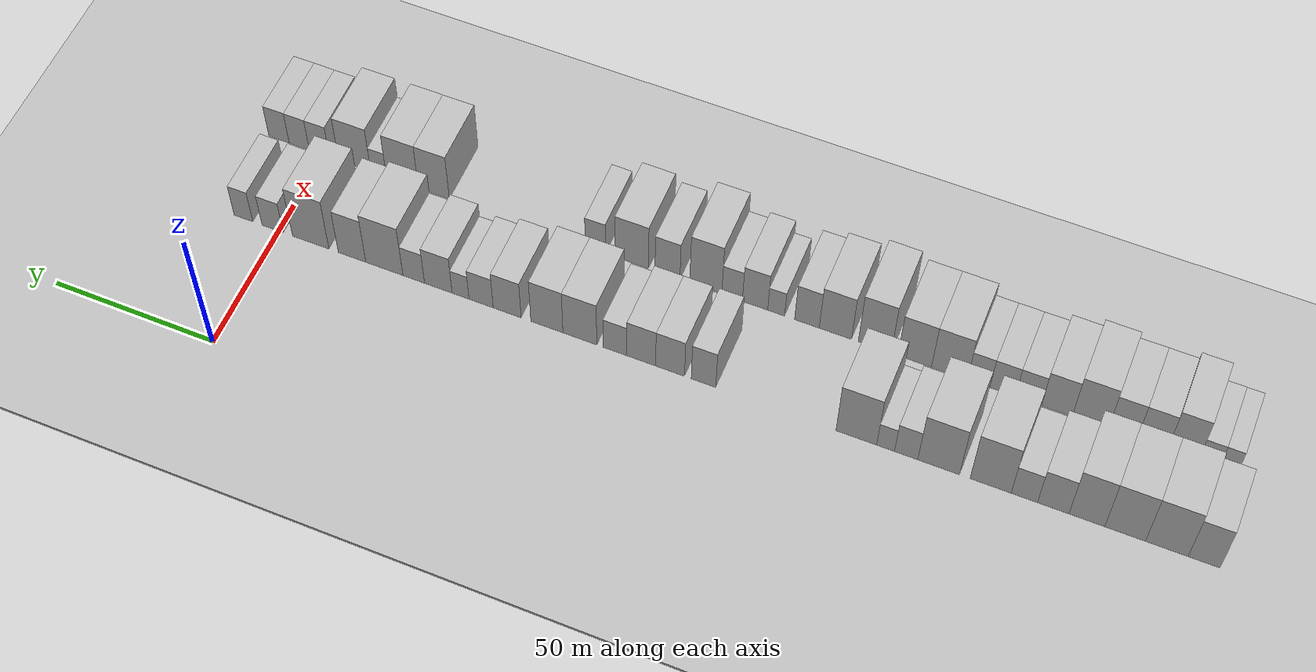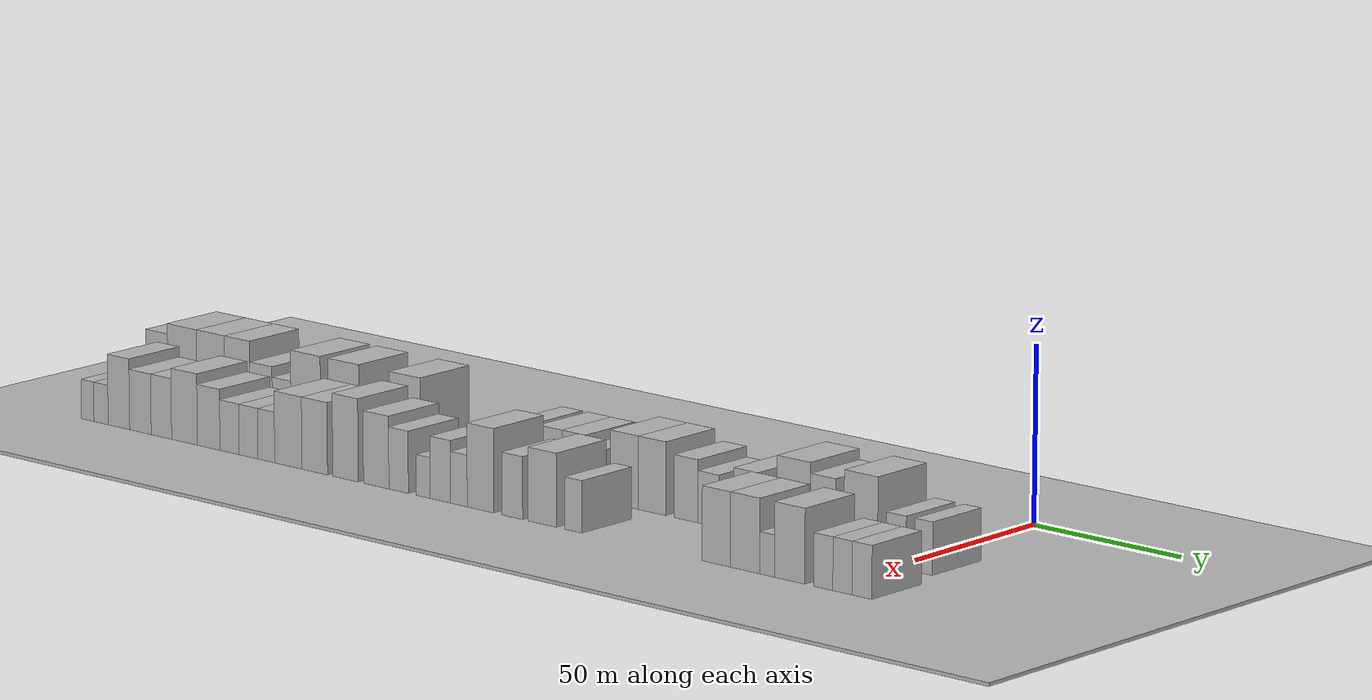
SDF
<sdf version="1.6">
 <world name="default">
  <include><name>ground_plane_1</name><uri>model://HANNAS_ground_plane</uri></include>
  <include>
   <name>ground_plane_2</name>
   <uri>model://HANNAS_ground_plane</uri>
   <pose>100 0 0  0 0 0</pose>
  </include>
  <model name="building_1">
   <static>1</static>
   <pose>50.0000 -273.6800 0 0.000000 0.000000 0.000000</pose>
   <link name="link">
    <pose>0 0 10.50 0 0 0</pose>
    <collision name="collision"><geometry><box><size>20.0000 8.6399 21.0000</size></box></geometry></collision>
    <visual name="visual">
     <cast_shadows>0</cast_shadows>
     <geometry><box><size>20.0000 8.6399 21.0000</size></box></geometry>
     <material>
      <script>
       <uri>model://HANNAS_wall/materials/scripts</uri>
       <uri>model://HANNAS_wall/materials/textures</uri>
       <name>vrc/HANNAS_wall</name>
      </script>
     </material>
    </visual>
   </link>
  </model>
  <model name="building_2">
   <static>1</static>
   <pose>50.0000 -263.5427 0 0.000000 0.000000 0.000000</pose>
   <link name="link">
    <pose>0 0 12.00 0 0 0</pose>
    <collision name="collision"><geometry><box><size>20.0000 11.6347 24.0000</size></box></geometry></collision>
    <visual name="visual">
     <cast_shadows>0</cast_shadows>
     <geometry><box><size>20.0000 11.6347 24.0000</size></box></geometry>
     <material>
      <script>
       <uri>model://HANNAS_wall/materials/scripts</uri>
       <uri>model://HANNAS_wall/materials/textures</uri>
       <name>vrc/HANNAS_wall</name>
      </script>
     </material>
    </visual>
   </link>
  </model>
  <model name="building_3">
   <static>1</static>
   <pose>50.0000 -252.1240 0 0.000000 0.000000 0.000000</pose>
   <link name="link">
    <pose>0 0 12.00 0 0 0</pose>
    <collision name="collision"><geometry><box><size>20.0000 11.2028 24.0000</size></box></geometry></collision>
    <visual name="visual">
     <cast_shadows>0</cast_shadows>
     <geometry><box><size>20.0000 11.2028 24.0000</size></box></geometry>
     <material>
      <script>
       <uri>model://HANNAS_wall/materials/scripts</uri>
       <uri>model://HANNAS_wall/materials/textures</uri>
       <name>vrc/HANNAS_wall</name>
      </script>
     </material>
    </visual>
   </link>
  </model>
  <model name="building_4">
   <static>1</static>
   <pose>50.0000 -241.5626 0 0.000000 0.000000 0.000000</pose>
   <link name="link">
    <pose>0 0 12.00 0 0 0</pose>
    <collision name="collision"><geometry><box><size>20.0000 9.9202 24.0000</size></box></geometry></collision>
    <visual name="visual">
     <cast_shadows>0</cast_shadows>
     <geometry><box><size>20.0000 9.9202 24.0000</size></box></geometry>
     <material>
      <script>
       <uri>model://HANNAS_wall/materials/scripts</uri>
       <uri>model://HANNAS_wall/materials/textures</uri>
       <name>vrc/HANNAS_wall</name>
      </script>
     </material>
    </visual>
   </link>
  </model>
  <model name="building_5">
   <static>1</static>
   <pose>50.0000 -232.2219 0 0.000000 0.000000 0.000000</pose>
   <link name="link">
    <pose>0 0 9.00 0 0 0</pose>
    <collision name="collision"><geometry><box><size>20.0000 8.7611 18.0000</size></box></geometry></collision>
    <visual name="visual">
     <cast_shadows>0</cast_shadows>
     <geometry><box><size>20.0000 8.7611 18.0000</size></box></geometry>
     <material>
      <script>
       <uri>model://HANNAS_wall/materials/scripts</uri>
       <uri>model://HANNAS_wall/materials/textures</uri>
       <name>vrc/HANNAS_wall</name>
      </script>
     </material>
    </visual>
   </link>
  </model>
  <model name="building_6">
   <static>1</static>
   <pose>50.0000 -224.1485 0 0.000000 0.000000 0.000000</pose>
   <link name="link">
    <pose>0 0 7.50 0 0 0</pose>
    <collision name="collision"><geometry><box><size>20.0000 7.3857 15.0000</size></box></geometry></collision>
    <visual name="visual">
     <cast_shadows>0</cast_shadows>
     <geometry><box><size>20.0000 7.3857 15.0000</size></box></geometry>
     <material>
      <script>
       <uri>model://HANNAS_wall/materials/scripts</uri>
       <uri>model://HANNAS_wall/materials/textures</uri>
       <name>vrc/HANNAS_wall</name>
      </script>
     </material>
    </visual>
   </link>
  </model>
  <model name="building_7">
   <static>1</static>
   <pose>50.0000 -214.6706 0 0.000000 0.000000 0.000000</pose>
   <link name="link">
    <pose>0 0 12.00 0 0 0</pose>
    <collision name="collision"><geometry><box><size>20.0000 11.5701 24.0000</size></box></geometry></collision>
    <visual name="visual">
     <cast_shadows>0</cast_shadows>
     <geometry><box><size>20.0000 11.5701 24.0000</size></box></geometry>
     <material>
      <script>
       <uri>model://HANNAS_wall/materials/scripts</uri>
       <uri>model://HANNAS_wall/materials/textures</uri>
       <name>vrc/HANNAS_wall</name>
      </script>
     </material>
    </visual>
   </link>
  </model>
  <model name="building_8">
   <static>1</static>
   <pose>50.0000 -199.9398 0 0.000000 0.000000 0.000000</pose>
   <link name="link">
    <pose>0 0 12.00 0 0 0</pose>
    <collision name="collision"><geometry><box><size>20.0000 11.8915 24.0000</size></box></geometry></collision>
    <visual name="visual">
     <cast_shadows>0</cast_shadows>
     <geometry><box><size>20.0000 11.8915 24.0000</size></box></geometry>
     <material>
      <script>
       <uri>model://HANNAS_wall/materials/scripts</uri>
       <uri>model://HANNAS_wall/materials/textures</uri>
       <name>vrc/HANNAS_wall</name>
      </script>
     </material>
    </visual>
   </link>
  </model>
  <model name="building_9">
   <static>1</static>
   <pose>50.0000 -190.6809 0 0.000000 0.000000 0.000000</pose>
   <link name="link">
    <pose>0 0 7.50 0 0 0</pose>
    <collision name="collision"><geometry><box><size>20.0000 6.6264 15.0000</size></box></geometry></collision>
    <visual name="visual">
     <cast_shadows>0</cast_shadows>
     <geometry><box><size>20.0000 6.6264 15.0000</size></box></geometry>
     <material>
      <script>
       <uri>model://HANNAS_wall/materials/scripts</uri>
       <uri>model://HANNAS_wall/materials/textures</uri>
       <name>vrc/HANNAS_wall</name>
      </script>
     </material>
    </visual>
   </link>
  </model>
  <model name="building_10">
   <static>1</static>
   <pose>50.0000 -184.7908 0 0.000000 0.000000 0.000000</pose>
   <link name="link">
    <pose>0 0 6.00 0 0 0</pose>
    <collision name="collision"><geometry><box><size>20.0000 5.1538 12.0000</size></box></geometry></collision>
    <visual name="visual">
     <cast_shadows>0</cast_shadows>
     <geometry><box><size>20.0000 5.1538 12.0000</size></box></geometry>
     <material>
      <script>
       <uri>model://HANNAS_wall/materials/scripts</uri>
       <uri>model://HANNAS_wall/materials/textures</uri>
       <name>vrc/HANNAS_wall</name>
      </script>
     </material>
    </visual>
   </link>
  </model>
  <model name="building_11">
   <static>1</static>
   <pose>50.0000 -176.3409 0 0.000000 0.000000 0.000000</pose>
   <link name="link">
    <pose>0 0 12.00 0 0 0</pose>
    <collision name="collision"><geometry><box><size>20.0000 11.7459 24.0000</size></box></geometry></collision>
    <visual name="visual">
     <cast_shadows>0</cast_shadows>
     <geometry><box><size>20.0000 11.7459 24.0000</size></box></geometry>
     <material>
      <script>
       <uri>model://HANNAS_wall/materials/scripts</uri>
       <uri>model://HANNAS_wall/materials/textures</uri>
       <name>vrc/HANNAS_wall</name>
      </script>
     </material>
    </visual>
   </link>
  </model>
  <model name="building_12">
   <static>1</static>
   <pose>50.0000 -131.5599 0 0.000000 0.000000 0.000000</pose>
   <link name="link">
    <pose>0 0 9.00 0 0 0</pose>
    <collision name="collision"><geometry><box><size>20.0000 7.2720 18.0000</size></box></geometry></collision>
    <visual name="visual">
     <cast_shadows>0</cast_shadows>
     <geometry><box><size>20.0000 7.2720 18.0000</size></box></geometry>
     <material>
      <script>
       <uri>model://HANNAS_wall/materials/scripts</uri>
       <uri>model://HANNAS_wall/materials/textures</uri>
       <name>vrc/HANNAS_wall</name>
      </script>
     </material>
    </visual>
   </link>
  </model>
  <model name="building_13">
   <static>1</static>
   <pose>50.0000 -121.6003 0 0.000000 0.000000 0.000000</pose>
   <link name="link">
    <pose>0 0 9.00 0 0 0</pose>
    <collision name="collision"><geometry><box><size>20.0000 8.6473 18.0000</size></box></geometry></collision>
    <visual name="visual">
     <cast_shadows>0</cast_shadows>
     <geometry><box><size>20.0000 8.6473 18.0000</size></box></geometry>
     <material>
      <script>
       <uri>model://HANNAS_wall/materials/scripts</uri>
       <uri>model://HANNAS_wall/materials/textures</uri>
       <name>vrc/HANNAS_wall</name>
      </script>
     </material>
    </visual>
   </link>
  </model>
  <model name="building_14">
   <static>1</static>
   <pose>50.0000 -112.9664 0 0.000000 0.000000 0.000000</pose>
   <link name="link">
    <pose>0 0 9.00 0 0 0</pose>
    <collision name="collision"><geometry><box><size>20.0000 8.6204 18.0000</size></box></geometry></collision>
    <visual name="visual">
     <cast_shadows>0</cast_shadows>
     <geometry><box><size>20.0000 8.6204 18.0000</size></box></geometry>
     <material>
      <script>
       <uri>model://HANNAS_wall/materials/scripts</uri>
       <uri>model://HANNAS_wall/materials/textures</uri>
       <name>vrc/HANNAS_wall</name>
      </script>
     </material>
    </visual>
   </link>
  </model>
  <model name="building_15">
   <static>1</static>
   <pose>50.0000 -105.1115 0 0.000000 0.000000 0.000000</pose>
   <link name="link">
    <pose>0 0 7.50 0 0 0</pose>
    <collision name="collision"><geometry><box><size>20.0000 7.0894 15.0000</size></box></geometry></collision>
    <visual name="visual">
     <cast_shadows>0</cast_shadows>
     <geometry><box><size>20.0000 7.0894 15.0000</size></box></geometry>
     <material>
      <script>
       <uri>model://HANNAS_wall/materials/scripts</uri>
       <uri>model://HANNAS_wall/materials/textures</uri>
       <name>vrc/HANNAS_wall</name>
      </script>
     </material>
    </visual>
   </link>
  </model>
  <model name="building_16">
   <static>1</static>
   <pose>50.0000 -94.4157 0 0.000000 0.000000 0.000000</pose>
   <link name="link">
    <pose>0 0 10.50 0 0 0</pose>
    <collision name="collision"><geometry><box><size>20.0000 10.3022 21.0000</size></box></geometry></collision>
    <visual name="visual">
     <cast_shadows>0</cast_shadows>
     <geometry><box><size>20.0000 10.3022 21.0000</size></box></geometry>
     <material>
      <script>
       <uri>model://HANNAS_wall/materials/scripts</uri>
       <uri>model://HANNAS_wall/materials/textures</uri>
       <name>vrc/HANNAS_wall</name>
      </script>
     </material>
    </visual>
   </link>
  </model>
  <model name="building_17">
   <static>1</static>
   <pose>50.0000 -84.3508 0 0.000000 0.000000 0.000000</pose>
   <link name="link">
    <pose>0 0 10.50 0 0 0</pose>
    <collision name="collision"><geometry><box><size>20.0000 9.8277 21.0000</size></box></geometry></collision>
    <visual name="visual">
     <cast_shadows>0</cast_shadows>
     <geometry><box><size>20.0000 9.8277 21.0000</size></box></geometry>
     <material>
      <script>
       <uri>model://HANNAS_wall/materials/scripts</uri>
       <uri>model://HANNAS_wall/materials/textures</uri>
       <name>vrc/HANNAS_wall</name>
      </script>
     </material>
    </visual>
   </link>
  </model>
  <model name="building_18">
   <static>1</static>
   <pose>50.0000 -72.1331 0 0.000000 0.000000 0.000000</pose>
   <link name="link">
    <pose>0 0 9.00 0 0 0</pose>
    <collision name="collision"><geometry><box><size>20.0000 8.6077 18.0000</size></box></geometry></collision>
    <visual name="visual">
     <cast_shadows>0</cast_shadows>
     <geometry><box><size>20.0000 8.6077 18.0000</size></box></geometry>
     <material>
      <script>
       <uri>model://HANNAS_wall/materials/scripts</uri>
       <uri>model://HANNAS_wall/materials/textures</uri>
       <name>vrc/HANNAS_wall</name>
      </script>
     </material>
    </visual>
   </link>
  </model>
  <model name="building_19">
   <static>1</static>
   <pose>50.0000 -64.0873 0 0.000000 0.000000 0.000000</pose>
   <link name="link">
    <pose>0 0 7.50 0 0 0</pose>
    <collision name="collision"><geometry><box><size>20.0000 7.4838 15.0000</size></box></geometry></collision>
    <visual name="visual">
     <cast_shadows>0</cast_shadows>
     <geometry><box><size>20.0000 7.4838 15.0000</size></box></geometry>
     <material>
      <script>
       <uri>model://HANNAS_wall/materials/scripts</uri>
       <uri>model://HANNAS_wall/materials/textures</uri>
       <name>vrc/HANNAS_wall</name>
      </script>
     </material>
    </visual>
   </link>
  </model>
  <model name="building_20">
   <static>1</static>
   <pose>50.0000 -57.7232 0 0.000000 0.000000 0.000000</pose>
   <link name="link">
    <pose>0 0 6.00 0 0 0</pose>
    <collision name="collision"><geometry><box><size>20.0000 5.2445 12.0000</size></box></geometry></collision>
    <visual name="visual">
     <cast_shadows>0</cast_shadows>
     <geometry><box><size>20.0000 5.2445 12.0000</size></box></geometry>
     <material>
      <script>
       <uri>model://HANNAS_wall/materials/scripts</uri>
       <uri>model://HANNAS_wall/materials/textures</uri>
       <name>vrc/HANNAS_wall</name>
      </script>
     </material>
    </visual>
   </link>
  </model>
  <model name="building_21">
   <static>1</static>
   <pose>50.0000 -50.7852 0 0.000000 0.000000 0.000000</pose>
   <link name="link">
    <pose>0 0 9.00 0 0 0</pose>
    <collision name="collision"><geometry><box><size>20.0000 8.6315 18.0000</size></box></geometry></collision>
    <visual name="visual">
     <cast_shadows>0</cast_shadows>
     <geometry><box><size>20.0000 8.6315 18.0000</size></box></geometry>
     <material>
      <script>
       <uri>model://HANNAS_wall/materials/scripts</uri>
       <uri>model://HANNAS_wall/materials/textures</uri>
       <name>vrc/HANNAS_wall</name>
      </script>
     </material>
    </visual>
   </link>
  </model>
  <model name="building_22">
   <static>1</static>
   <pose>50.0000 -43.0799 0 0.000000 0.000000 0.000000</pose>
   <link name="link">
    <pose>0 0 7.50 0 0 0</pose>
    <collision name="collision"><geometry><box><size>20.0000 6.7789 15.0000</size></box></geometry></collision>
    <visual name="visual">
     <cast_shadows>0</cast_shadows>
     <geometry><box><size>20.0000 6.7789 15.0000</size></box></geometry>
     <material>
      <script>
       <uri>model://HANNAS_wall/materials/scripts</uri>
       <uri>model://HANNAS_wall/materials/textures</uri>
       <name>vrc/HANNAS_wall</name>
      </script>
     </material>
    </visual>
   </link>
  </model>
  <model name="building_23">
   <static>1</static>
   <pose>50.0000 -33.8264 0 0.000000 0.000000 0.000000</pose>
   <link name="link">
    <pose>0 0 12.00 0 0 0</pose>
    <collision name="collision"><geometry><box><size>20.0000 11.7282 24.0000</size></box></geometry></collision>
    <visual name="visual">
     <cast_shadows>0</cast_shadows>
     <geometry><box><size>20.0000 11.7282 24.0000</size></box></geometry>
     <material>
      <script>
       <uri>model://HANNAS_wall/materials/scripts</uri>
       <uri>model://HANNAS_wall/materials/textures</uri>
       <name>vrc/HANNAS_wall</name>
      </script>
     </material>
    </visual>
   </link>
  </model>
  <model name="building_24">
   <static>1</static>
   <pose>50.0000 -23.6046 0 0.000000 0.000000 0.000000</pose>
   <link name="link">
    <pose>0 0 10.50 0 0 0</pose>
    <collision name="collision"><geometry><box><size>20.0000 8.7154 21.0000</size></box></geometry></collision>
    <visual name="visual">
     <cast_shadows>0</cast_shadows>
     <geometry><box><size>20.0000 8.7154 21.0000</size></box></geometry>
     <material>
      <script>
       <uri>model://HANNAS_wall/materials/scripts</uri>
       <uri>model://HANNAS_wall/materials/textures</uri>
       <name>vrc/HANNAS_wall</name>
      </script>
     </material>
    </visual>
   </link>
  </model>
  <model name="building_25">
   <static>1</static>
   <pose>50.0000 -10.4218 0 0.000000 0.000000 0.000000</pose>
   <link name="link">
    <pose>0 0 12.00 0 0 0</pose>
    <collision name="collision"><geometry><box><size>20.0000 11.6502 24.0000</size></box></geometry></collision>
    <visual name="visual">
     <cast_shadows>0</cast_shadows>
     <geometry><box><size>20.0000 11.6502 24.0000</size></box></geometry>
     <material>
      <script>
       <uri>model://HANNAS_wall/materials/scripts</uri>
       <uri>model://HANNAS_wall/materials/textures</uri>
       <name>vrc/HANNAS_wall</name>
      </script>
     </material>
    </visual>
   </link>
  </model>
  <model name="building_26">
   <static>1</static>
   <pose>50.0000 1.8205 0 0.000000 0.000000 0.000000</pose>
   <link name="link">
    <pose>0 0 7.50 0 0 0</pose>
    <collision name="collision"><geometry><box><size>20.0000 6.8344 15.0000</size></box></geometry></collision>
    <visual name="visual">
     <cast_shadows>0</cast_shadows>
     <geometry><box><size>20.0000 6.8344 15.0000</size></box></geometry>
     <material>
      <script>
       <uri>model://HANNAS_wall/materials/scripts</uri>
       <uri>model://HANNAS_wall/materials/textures</uri>
       <name>vrc/HANNAS_wall</name>
      </script>
     </material>
    </visual>
   </link>
  </model>
  <model name="building_27">
   <static>1</static>
   <pose>50.0000 11.2494 0 0.000000 0.000000 0.000000</pose>
   <link name="link">
    <pose>0 0 7.50 0 0 0</pose>
    <collision name="collision"><geometry><box><size>20.0000 6.0233 15.0000</size></box></geometry></collision>
    <visual name="visual">
     <cast_shadows>0</cast_shadows>
     <geometry><box><size>20.0000 6.0233 15.0000</size></box></geometry>
     <material>
      <script>
       <uri>model://HANNAS_wall/materials/scripts</uri>
       <uri>model://HANNAS_wall/materials/textures</uri>
       <name>vrc/HANNAS_wall</name>
      </script>
     </material>
    </visual>
   </link>
  </model>
  <model name="building_56">
   <static>1</static>
   <pose>79.0000 -272.5074 0 0.000000 0.000000 0.000000</pose>
   <link name="link">
    <pose>0 0 6.00 0 0 0</pose>
    <collision name="collision"><geometry><box><size>20.0000 4.9853 12.0000</size></box></geometry></collision>
    <visual name="visual">
     <cast_shadows>0</cast_shadows>
     <geometry><box><size>20.0000 4.9853 12.0000</size></box></geometry>
     <material>
      <script>
       <uri>model://HANNAS_wall/materials/scripts</uri>
       <uri>model://HANNAS_wall/materials/textures</uri>
       <name>vrc/HANNAS_wall</name>
      </script>
     </material>
    </visual>
   </link>
  </model>
  <model name="building_57">
   <static>1</static>
   <pose>79.0000 -267.1416 0 0.000000 0.000000 0.000000</pose>
   <link name="link">
    <pose>0 0 6.00 0 0 0</pose>
    <collision name="collision"><geometry><box><size>20.0000 5.7462 12.0000</size></box></geometry></collision>
    <visual name="visual">
     <cast_shadows>0</cast_shadows>
     <geometry><box><size>20.0000 5.7462 12.0000</size></box></geometry>
     <material>
      <script>
       <uri>model://HANNAS_wall/materials/scripts</uri>
       <uri>model://HANNAS_wall/materials/textures</uri>
       <name>vrc/HANNAS_wall</name>
      </script>
     </material>
    </visual>
   </link>
  </model>
  <model name="building_58">
   <static>1</static>
   <pose>79.0000 -259.9325 0 0.000000 0.000000 0.000000</pose>
   <link name="link">
    <pose>0 0 10.50 0 0 0</pose>
    <collision name="collision"><geometry><box><size>20.0000 8.6721 21.0000</size></box></geometry></collision>
    <visual name="visual">
     <cast_shadows>0</cast_shadows>
     <geometry><box><size>20.0000 8.6721 21.0000</size></box></geometry>
     <material>
      <script>
       <uri>model://HANNAS_wall/materials/scripts</uri>
       <uri>model://HANNAS_wall/materials/textures</uri>
       <name>vrc/HANNAS_wall</name>
      </script>
     </material>
    </visual>
   </link>
  </model>
  <model name="building_59">
   <static>1</static>
   <pose>79.0000 -251.3336 0 0.000000 0.000000 0.000000</pose>
   <link name="link">
    <pose>0 0 9.00 0 0 0</pose>
    <collision name="collision"><geometry><box><size>20.0000 8.5257 18.0000</size></box></geometry></collision>
    <visual name="visual">
     <cast_shadows>0</cast_shadows>
     <geometry><box><size>20.0000 8.5257 18.0000</size></box></geometry>
     <material>
      <script>
       <uri>model://HANNAS_wall/materials/scripts</uri>
       <uri>model://HANNAS_wall/materials/textures</uri>
       <name>vrc/HANNAS_wall</name>
      </script>
     </material>
    </visual>
   </link>
  </model>
  <model name="building_60">
   <static>1</static>
   <pose>79.0000 -243.0124 0 0.000000 0.000000 0.000000</pose>
   <link name="link">
    <pose>0 0 9.00 0 0 0</pose>
    <collision name="collision"><geometry><box><size>20.0000 8.1168 18.0000</size></box></geometry></collision>
    <visual name="visual">
     <cast_shadows>0</cast_shadows>
     <geometry><box><size>20.0000 8.1168 18.0000</size></box></geometry>
     <material>
      <script>
       <uri>model://HANNAS_wall/materials/scripts</uri>
       <uri>model://HANNAS_wall/materials/textures</uri>
       <name>vrc/HANNAS_wall</name>
      </script>
     </material>
    </visual>
   </link>
  </model>
  <model name="building_61">
   <static>1</static>
   <pose>79.0000 -233.8450 0 0.000000 0.000000 0.000000</pose>
   <link name="link">
    <pose>0 0 10.50 0 0 0</pose>
    <collision name="collision"><geometry><box><size>20.0000 10.2180 21.0000</size></box></geometry></collision>
    <visual name="visual">
     <cast_shadows>0</cast_shadows>
     <geometry><box><size>20.0000 10.2180 21.0000</size></box></geometry>
     <material>
      <script>
       <uri>model://HANNAS_wall/materials/scripts</uri>
       <uri>model://HANNAS_wall/materials/textures</uri>
       <name>vrc/HANNAS_wall</name>
      </script>
     </material>
    </visual>
   </link>
  </model>
  <model name="building_62">
   <static>1</static>
   <pose>79.0000 -224.3165 0 0.000000 0.000000 0.000000</pose>
   <link name="link">
    <pose>0 0 9.00 0 0 0</pose>
    <collision name="collision"><geometry><box><size>20.0000 8.8390 18.0000</size></box></geometry></collision>
    <visual name="visual">
     <cast_shadows>0</cast_shadows>
     <geometry><box><size>20.0000 8.8390 18.0000</size></box></geometry>
     <material>
      <script>
       <uri>model://HANNAS_wall/materials/scripts</uri>
       <uri>model://HANNAS_wall/materials/textures</uri>
       <name>vrc/HANNAS_wall</name>
      </script>
     </material>
    </visual>
   </link>
  </model>
  <model name="building_63">
   <static>1</static>
   <pose>79.0000 -216.1628 0 0.000000 0.000000 0.000000</pose>
   <link name="link">
    <pose>0 0 7.50 0 0 0</pose>
    <collision name="collision"><geometry><box><size>20.0000 7.4683 15.0000</size></box></geometry></collision>
    <visual name="visual">
     <cast_shadows>0</cast_shadows>
     <geometry><box><size>20.0000 7.4683 15.0000</size></box></geometry>
     <material>
      <script>
       <uri>model://HANNAS_wall/materials/scripts</uri>
       <uri>model://HANNAS_wall/materials/textures</uri>
       <name>vrc/HANNAS_wall</name>
      </script>
     </material>
    </visual>
   </link>
  </model>
  <model name="building_64">
   <static>1</static>
   <pose>79.0000 -208.7522 0 0.000000 0.000000 0.000000</pose>
   <link name="link">
    <pose>0 0 7.50 0 0 0</pose>
    <collision name="collision"><geometry><box><size>20.0000 7.3530 15.0000</size></box></geometry></collision>
    <visual name="visual">
     <cast_shadows>0</cast_shadows>
     <geometry><box><size>20.0000 7.3530 15.0000</size></box></geometry>
     <material>
      <script>
       <uri>model://HANNAS_wall/materials/scripts</uri>
       <uri>model://HANNAS_wall/materials/textures</uri>
       <name>vrc/HANNAS_wall</name>
      </script>
     </material>
    </visual>
   </link>
  </model>
  <model name="building_65">
   <static>1</static>
   <pose>79.0000 -201.8320 0 0.000000 0.000000 0.000000</pose>
   <link name="link">
    <pose>0 0 7.50 0 0 0</pose>
    <collision name="collision"><geometry><box><size>20.0000 6.4873 15.0000</size></box></geometry></collision>
    <visual name="visual">
     <cast_shadows>0</cast_shadows>
     <geometry><box><size>20.0000 6.4873 15.0000</size></box></geometry>
     <material>
      <script>
       <uri>model://HANNAS_wall/materials/scripts</uri>
       <uri>model://HANNAS_wall/materials/textures</uri>
       <name>vrc/HANNAS_wall</name>
      </script>
     </material>
    </visual>
   </link>
  </model>
  <model name="building_66">
   <static>1</static>
   <pose>79.0000 -193.3451 0 0.000000 0.000000 0.000000</pose>
   <link name="link">
    <pose>0 0 10.50 0 0 0</pose>
    <collision name="collision"><geometry><box><size>20.0000 10.4865 21.0000</size></box></geometry></collision>
    <visual name="visual">
     <cast_shadows>0</cast_shadows>
     <geometry><box><size>20.0000 10.4865 21.0000</size></box></geometry>
     <material>
      <script>
       <uri>model://HANNAS_wall/materials/scripts</uri>
       <uri>model://HANNAS_wall/materials/textures</uri>
       <name>vrc/HANNAS_wall</name>
      </script>
     </material>
    </visual>
   </link>
  </model>
  <model name="building_67">
   <static>1</static>
   <pose>79.0000 -183.1877 0 0.000000 0.000000 0.000000</pose>
   <link name="link">
    <pose>0 0 10.50 0 0 0</pose>
    <collision name="collision"><geometry><box><size>20.0000 9.8282 21.0000</size></box></geometry></collision>
    <visual name="visual">
     <cast_shadows>0</cast_shadows>
     <geometry><box><size>20.0000 9.8282 21.0000</size></box></geometry>
     <material>
      <script>
       <uri>model://HANNAS_wall/materials/scripts</uri>
       <uri>model://HANNAS_wall/materials/textures</uri>
       <name>vrc/HANNAS_wall</name>
      </script>
     </material>
    </visual>
   </link>
  </model>
  <model name="building_68">
   <static>1</static>
   <pose>79.0000 -171.4203 0 0.000000 0.000000 0.000000</pose>
   <link name="link">
    <pose>0 0 12.00 0 0 0</pose>
    <collision name="collision"><geometry><box><size>20.0000 9.7066 24.0000</size></box></geometry></collision>
    <visual name="visual">
     <cast_shadows>0</cast_shadows>
     <geometry><box><size>20.0000 9.7066 24.0000</size></box></geometry>
     <material>
      <script>
       <uri>model://HANNAS_wall/materials/scripts</uri>
       <uri>model://HANNAS_wall/materials/textures</uri>
       <name>vrc/HANNAS_wall</name>
      </script>
     </material>
    </visual>
   </link>
  </model>
  <model name="building_69">
   <static>1</static>
   <pose>79.0000 -159.7670 0 0.000000 0.000000 0.000000</pose>
   <link name="link">
    <pose>0 0 10.50 0 0 0</pose>
    <collision name="collision"><geometry><box><size>20.0000 9.6000 21.0000</size></box></geometry></collision>
    <visual name="visual">
     <cast_shadows>0</cast_shadows>
     <geometry><box><size>20.0000 9.6000 21.0000</size></box></geometry>
     <material>
      <script>
       <uri>model://HANNAS_wall/materials/scripts</uri>
       <uri>model://HANNAS_wall/materials/textures</uri>
       <name>vrc/HANNAS_wall</name>
      </script>
     </material>
    </visual>
   </link>
  </model>
  <model name="building_70">
   <static>1</static>
   <pose>79.0000 -151.2891 0 0.000000 0.000000 0.000000</pose>
   <link name="link">
    <pose>0 0 9.00 0 0 0</pose>
    <collision name="collision"><geometry><box><size>20.0000 7.3558 18.0000</size></box></geometry></collision>
    <visual name="visual">
     <cast_shadows>0</cast_shadows>
     <geometry><box><size>20.0000 7.3558 18.0000</size></box></geometry>
     <material>
      <script>
       <uri>model://HANNAS_wall/materials/scripts</uri>
       <uri>model://HANNAS_wall/materials/textures</uri>
       <name>vrc/HANNAS_wall</name>
      </script>
     </material>
    </visual>
   </link>
  </model>
  <model name="building_71">
   <static>1</static>
   <pose>79.0000 -142.0737 0 0.000000 0.000000 0.000000</pose>
   <link name="link">
    <pose>0 0 6.00 0 0 0</pose>
    <collision name="collision"><geometry><box><size>20.0000 5.0750 12.0000</size></box></geometry></collision>
    <visual name="visual">
     <cast_shadows>0</cast_shadows>
     <geometry><box><size>20.0000 5.0750 12.0000</size></box></geometry>
     <material>
      <script>
       <uri>model://HANNAS_wall/materials/scripts</uri>
       <uri>model://HANNAS_wall/materials/textures</uri>
       <name>vrc/HANNAS_wall</name>
      </script>
     </material>
    </visual>
   </link>
  </model>
  <model name="building_72">
   <static>1</static>
   <pose>79.0000 -135.7143 0 0.000000 0.000000 0.000000</pose>
   <link name="link">
    <pose>0 0 9.00 0 0 0</pose>
    <collision name="collision"><geometry><box><size>20.0000 7.6437 18.0000</size></box></geometry></collision>
    <visual name="visual">
     <cast_shadows>0</cast_shadows>
     <geometry><box><size>20.0000 7.6437 18.0000</size></box></geometry>
     <material>
      <script>
       <uri>model://HANNAS_wall/materials/scripts</uri>
       <uri>model://HANNAS_wall/materials/textures</uri>
       <name>vrc/HANNAS_wall</name>
      </script>
     </material>
    </visual>
   </link>
  </model>
  <model name="building_73">
   <static>1</static>
   <pose>79.0000 -128.7778 0 0.000000 0.000000 0.000000</pose>
   <link name="link">
    <pose>0 0 7.50 0 0 0</pose>
    <collision name="collision"><geometry><box><size>20.0000 6.2293 15.0000</size></box></geometry></collision>
    <visual name="visual">
     <cast_shadows>0</cast_shadows>
     <geometry><box><size>20.0000 6.2293 15.0000</size></box></geometry>
     <material>
      <script>
       <uri>model://HANNAS_wall/materials/scripts</uri>
       <uri>model://HANNAS_wall/materials/textures</uri>
       <name>vrc/HANNAS_wall</name>
      </script>
     </material>
    </visual>
   </link>
  </model>
  <model name="building_74">
   <static>1</static>
   <pose>79.0000 -120.7708 0 0.000000 0.000000 0.000000</pose>
   <link name="link">
    <pose>0 0 12.00 0 0 0</pose>
    <collision name="collision"><geometry><box><size>20.0000 9.7848 24.0000</size></box></geometry></collision>
    <visual name="visual">
     <cast_shadows>0</cast_shadows>
     <geometry><box><size>20.0000 9.7848 24.0000</size></box></geometry>
     <material>
      <script>
       <uri>model://HANNAS_wall/materials/scripts</uri>
       <uri>model://HANNAS_wall/materials/textures</uri>
       <name>vrc/HANNAS_wall</name>
      </script>
     </material>
    </visual>
   </link>
  </model>
  <model name="building_75">
   <static>1</static>
   <pose>79.0000 -109.0560 0 0.000000 0.000000 0.000000</pose>
   <link name="link">
    <pose>0 0 9.00 0 0 0</pose>
    <collision name="collision"><geometry><box><size>20.0000 7.6449 18.0000</size></box></geometry></collision>
    <visual name="visual">
     <cast_shadows>0</cast_shadows>
     <geometry><box><size>20.0000 7.6449 18.0000</size></box></geometry>
     <material>
      <script>
       <uri>model://HANNAS_wall/materials/scripts</uri>
       <uri>model://HANNAS_wall/materials/textures</uri>
       <name>vrc/HANNAS_wall</name>
      </script>
     </material>
    </visual>
   </link>
  </model>
  <model name="building_76">
   <static>1</static>
   <pose>79.0000 -98.1008 0 0.000000 0.000000 0.000000</pose>
   <link name="link">
    <pose>0 0 10.50 0 0 0</pose>
    <collision name="collision"><geometry><box><size>20.0000 10.2655 21.0000</size></box></geometry></collision>
    <visual name="visual">
     <cast_shadows>0</cast_shadows>
     <geometry><box><size>20.0000 10.2655 21.0000</size></box></geometry>
     <material>
      <script>
       <uri>model://HANNAS_wall/materials/scripts</uri>
       <uri>model://HANNAS_wall/materials/textures</uri>
       <name>vrc/HANNAS_wall</name>
      </script>
     </material>
    </visual>
   </link>
  </model>
  <model name="building_77">
   <static>1</static>
   <pose>79.0000 -86.8222 0 0.000000 0.000000 0.000000</pose>
   <link name="link">
    <pose>0 0 7.50 0 0 0</pose>
    <collision name="collision"><geometry><box><size>20.0000 6.2918 15.0000</size></box></geometry></collision>
    <visual name="visual">
     <cast_shadows>0</cast_shadows>
     <geometry><box><size>20.0000 6.2918 15.0000</size></box></geometry>
     <material>
      <script>
       <uri>model://HANNAS_wall/materials/scripts</uri>
       <uri>model://HANNAS_wall/materials/textures</uri>
       <name>vrc/HANNAS_wall</name>
      </script>
     </material>
    </visual>
   </link>
  </model>
  <model name="building_78">
   <static>1</static>
   <pose>79.0000 -35.7959 0 0.000000 0.000000 0.000000</pose>
   <link name="link">
    <pose>0 0 10.50 0 0 0</pose>
    <collision name="collision"><geometry><box><size>20.0000 9.9203 21.0000</size></box></geometry></collision>
    <visual name="visual">
     <cast_shadows>0</cast_shadows>
     <geometry><box><size>20.0000 9.9203 21.0000</size></box></geometry>
     <material>
      <script>
       <uri>model://HANNAS_wall/materials/scripts</uri>
       <uri>model://HANNAS_wall/materials/textures</uri>
       <name>vrc/HANNAS_wall</name>
      </script>
     </material>
    </visual>
   </link>
  </model>
  <model name="building_79">
   <static>1</static>
   <pose>79.0000 -25.6920 0 0.000000 0.000000 0.000000</pose>
   <link name="link">
    <pose>0 0 10.50 0 0 0</pose>
    <collision name="collision"><geometry><box><size>20.0000 10.2874 21.0000</size></box></geometry></collision>
    <visual name="visual">
     <cast_shadows>0</cast_shadows>
     <geometry><box><size>20.0000 10.2874 21.0000</size></box></geometry>
     <material>
      <script>
       <uri>model://HANNAS_wall/materials/scripts</uri>
       <uri>model://HANNAS_wall/materials/textures</uri>
       <name>vrc/HANNAS_wall</name>
      </script>
     </material>
    </visual>
   </link>
  </model>
  <model name="building_80">
   <static>1</static>
   <pose>79.0000 -18.0083 0 0.000000 0.000000 0.000000</pose>
   <link name="link">
    <pose>0 0 6.00 0 0 0</pose>
    <collision name="collision"><geometry><box><size>20.0000 5.0801 12.0000</size></box></geometry></collision>
    <visual name="visual">
     <cast_shadows>0</cast_shadows>
     <geometry><box><size>20.0000 5.0801 12.0000</size></box></geometry>
     <material>
      <script>
       <uri>model://HANNAS_wall/materials/scripts</uri>
       <uri>model://HANNAS_wall/materials/textures</uri>
       <name>vrc/HANNAS_wall</name>
      </script>
     </material>
    </visual>
   </link>
  </model>
  <model name="building_81">
   <static>1</static>
   <pose>79.0000 -10.2196 0 0.000000 0.000000 0.000000</pose>
   <link name="link">
    <pose>0 0 10.50 0 0 0</pose>
    <collision name="collision"><geometry><box><size>20.0000 10.4972 21.0000</size></box></geometry></collision>
    <visual name="visual">
     <cast_shadows>0</cast_shadows>
     <geometry><box><size>20.0000 10.4972 21.0000</size></box></geometry>
     <material>
      <script>
       <uri>model://HANNAS_wall/materials/scripts</uri>
       <uri>model://HANNAS_wall/materials/textures</uri>
       <name>vrc/HANNAS_wall</name>
      </script>
     </material>
    </visual>
   </link>
  </model>
  <model name="building_82">
   <static>1</static>
   <pose>79.0000 1.3458 0 0.000000 0.000000 0.000000</pose>
   <link name="link">
    <pose>0 0 7.50 0 0 0</pose>
    <collision name="collision"><geometry><box><size>20.0000 6.6337 15.0000</size></box></geometry></collision>
    <visual name="visual">
     <cast_shadows>0</cast_shadows>
     <geometry><box><size>20.0000 6.6337 15.0000</size></box></geometry>
     <material>
      <script>
       <uri>model://HANNAS_wall/materials/scripts</uri>
       <uri>model://HANNAS_wall/materials/textures</uri>
       <name>vrc/HANNAS_wall</name>
      </script>
     </material>
    </visual>
   </link>
  </model>
  <model name="building_83">
   <static>1</static>
   <pose>79.0000 7.9566 0 0.000000 0.000000 0.000000</pose>
   <link name="link">
    <pose>0 0 7.50 0 0 0</pose>
    <collision name="collision"><geometry><box><size>20.0000 6.5879 15.0000</size></box></geometry></collision>
    <visual name="visual">
     <cast_shadows>0</cast_shadows>
     <geometry><box><size>20.0000 6.5879 15.0000</size></box></geometry>
     <material>
      <script>
       <uri>model://HANNAS_wall/materials/scripts</uri>
       <uri>model://HANNAS_wall/materials/textures</uri>
       <name>vrc/HANNAS_wall</name>
      </script>
     </material>
    </visual>
   </link>
  </model>
  <model name="building_84">
   <static>1</static>
   <pose>79.0000 14.6105 0 0.000000 0.000000 0.000000</pose>
   <link name="link">
    <pose>0 0 7.50 0 0 0</pose>
    <collision name="collision"><geometry><box><size>20.0000 6.7198 15.0000</size></box></geometry></collision>
    <visual name="visual">
     <cast_shadows>0</cast_shadows>
     <geometry><box><size>20.0000 6.7198 15.0000</size></box></geometry>
     <material>
      <script>
       <uri>model://HANNAS_wall/materials/scripts</uri>
       <uri>model://HANNAS_wall/materials/textures</uri>
       <name>vrc/HANNAS_wall</name>
      </script>
     </material>
    </visual>
   </link>
  </model>
 </world>
</sdf>
